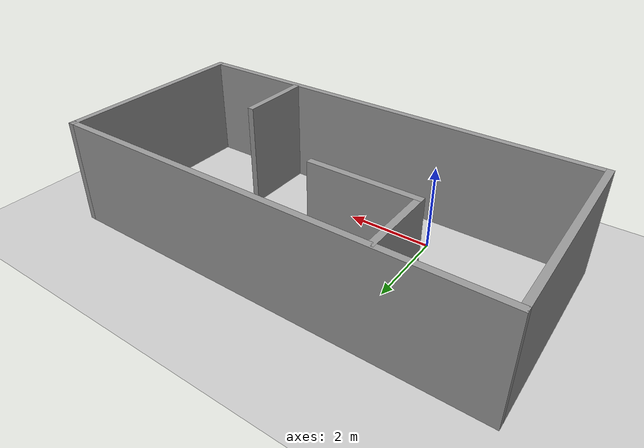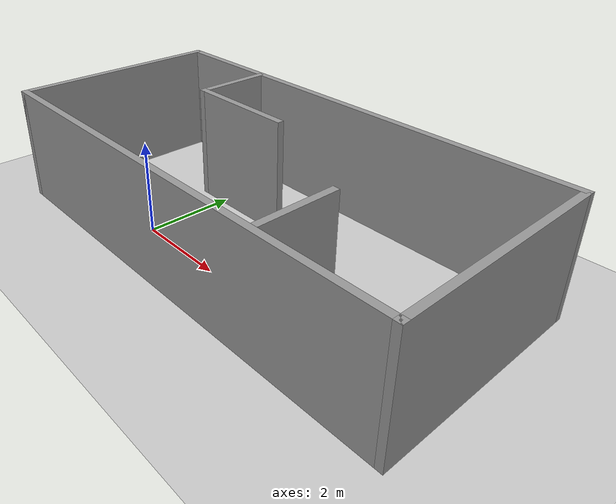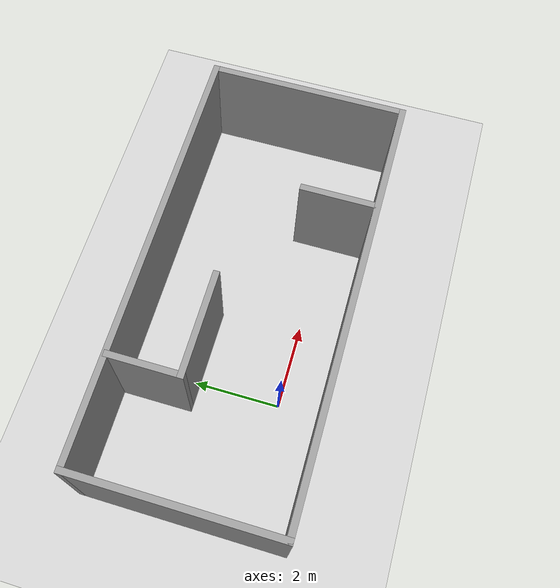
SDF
<sdf version="1.7">
 <world name="default">
  <light name="sun" type="directional">
   <pose>0 0 10 0 -0 0</pose>
   <diffuse>0.8 0.8 0.8 1</diffuse>
   <specular>0.2 0.2 0.2 1</specular>
   <attenuation>
    <range>1000</range>
    <constant>0.9</constant>
    <linear>0.01</linear>
    <quadratic>0.001</quadratic>
   </attenuation>
   <direction>-0.5 0.1 -0.9</direction>
   <spot><inner_angle>0</inner_angle><outer_angle>0</outer_angle><falloff>0</falloff></spot>
  </light>
  <model name="ground_plane">
   <static>1</static>
   <link name="link">
    <collision name="collision">
     <geometry><plane><normal>0 0 1</normal><size>100 100</size></plane></geometry>
     <surface>
      <contact><collide_bitmask>65535</collide_bitmask></contact>
      <friction><ode><mu>100</mu><mu2>50</mu2></ode></friction>
     </surface>
    </collision>
    <visual name="visual">
     <cast_shadows>0</cast_shadows>
     <geometry><plane><normal>0 0 1</normal><size>100 100</size></plane></geometry>
     <material>
      <script><uri>file://media/materials/scripts/gazebo.material</uri><name>Gazebo/Grey</name></script>
     </material>
    </visual>
   </link>
  </model>
  <gravity>0 0 -9.8</gravity>
  <magnetic_field>6e-06 2.3e-05 -4.2e-05</magnetic_field>
  <atmosphere type="adiabatic"/>
  <physics type="ode">
   <max_step_size>0.001</max_step_size>
   <real_time_factor>1</real_time_factor>
   <real_time_update_rate>1000</real_time_update_rate>
  </physics>
  <scene><ambient>0.4 0.4 0.4 1</ambient><background>0.7 0.7 0.7 1</background><shadows>1</shadows></scene>
  <audio><device>default</device></audio>
  <spherical_coordinates>
   <surface_model>EARTH_WGS84</surface_model>
   <latitude_deg>0</latitude_deg>
   <longitude_deg>0</longitude_deg>
   <elevation>0</elevation>
   <heading_deg>0</heading_deg>
  </spherical_coordinates>
  <model name="my_custom_world.world">
   <pose>1.97009 1.29653 0 0 -0 0</pose>
   <link name="Wall_1">
    <collision name="Wall_1_Collision">
     <geometry><box><size>10.25 0.15 2.5</size></box></geometry>
     <pose>0 0 1.25 0 -0 0</pose>
    </collision>
    <visual name="Wall_1_Visual">
     <pose>0 0 1.25 0 -0 0</pose>
     <geometry><box><size>10.25 0.15 2.5</size></box></geometry>
     <material>
      <script><uri>file://media/materials/scripts/gazebo.material</uri><name>Gazebo/Grey</name></script>
      <ambient>1 1 1 1</ambient>
     </material>
     <meta><layer>0</layer></meta>
    </visual>
    <pose>0 2.3 0 0 -0 3.14159</pose>
   </link>
   <link name="Wall_2">
    <collision name="Wall_2_Collision">
     <geometry><box><size>4.75 0.15 2.5</size></box></geometry>
     <pose>0 0 1.25 0 -0 0</pose>
    </collision>
    <visual name="Wall_2_Visual">
     <pose>0 0 1.25 0 -0 0</pose>
     <geometry><box><size>4.75 0.15 2.5</size></box></geometry>
     <material>
      <script><uri>file://media/materials/scripts/gazebo.material</uri><name>Gazebo/Grey</name></script>
      <ambient>1 1 1 1</ambient>
     </material>
     <meta><layer>0</layer></meta>
    </visual>
    <pose>-5.05 0 0 0 -0 -1.5708</pose>
   </link>
   <link name="Wall_3">
    <collision name="Wall_3_Collision">
     <geometry><box><size>10.25 0.15 2.5</size></box></geometry>
     <pose>0 0 1.25 0 -0 0</pose>
    </collision>
    <visual name="Wall_3_Visual">
     <pose>0 0 1.25 0 -0 0</pose>
     <geometry><box><size>10.25 0.15 2.5</size></box></geometry>
     <material>
      <script><uri>file://media/materials/scripts/gazebo.material</uri><name>Gazebo/Grey</name></script>
      <ambient>1 1 1 1</ambient>
     </material>
     <meta><layer>0</layer></meta>
    </visual>
    <pose>0 -2.3 0 0 -0 0</pose>
   </link>
   <link name="Wall_4">
    <collision name="Wall_4_Collision">
     <geometry><box><size>4.75 0.15 2.5</size></box></geometry>
     <pose>0 0 1.25 0 -0 0</pose>
    </collision>
    <visual name="Wall_4_Visual">
     <pose>0 0 1.25 0 -0 0</pose>
     <geometry><box><size>4.75 0.15 2.5</size></box></geometry>
     <material>
      <script><uri>file://media/materials/scripts/gazebo.material</uri><name>Gazebo/Grey</name></script>
      <ambient>1 1 1 1</ambient>
     </material>
     <meta><layer>0</layer></meta>
    </visual>
    <pose>5.05 0 0 0 -0 1.5708</pose>
   </link>
   <link name="Wall_6">
    <collision name="Wall_6_Collision">
     <geometry><box><size>1.75 0.15 2.5</size></box></geometry>
     <pose>0 0 1.25 0 -0 0</pose>
    </collision>
    <visual name="Wall_6_Visual">
     <pose>0 0 1.25 0 -0 0</pose>
     <geometry><box><size>1.75 0.15 2.5</size></box></geometry>
     <material>
      <script><uri>file://media/materials/scripts/gazebo.material</uri><name>Gazebo/Grey</name></script>
      <ambient>1 1 1 1</ambient>
     </material>
     <meta><layer>0</layer></meta>
    </visual>
    <pose>-2.57304 1.45977 0 0 -0 -1.5708</pose>
   </link>
   <link name="Wall_7">
    <collision name="Wall_7_Collision">
     <geometry><box><size>2.5 0.15 2.5</size></box></geometry>
     <pose>0 0 1.25 0 -0 0</pose>
    </collision>
    <visual name="Wall_7_Visual">
     <pose>0 0 1.25 0 -0 0</pose>
     <geometry><box><size>2.5 0.15 2.5</size></box></geometry>
     <material>
      <script><uri>file://media/materials/scripts/gazebo.material</uri><name>Gazebo/Grey</name></script>
      <ambient>1 1 1 1</ambient>
     </material>
     <meta><layer>0</layer></meta>
    </visual>
    <pose>-1.39804 0.659773 0 0 -0 0</pose>
   </link>
   <link name="Wall_9">
    <collision name="Wall_9_Collision">
     <geometry><box><size>1.75 0.15 2.5</size></box></geometry>
     <pose>0 0 1.25 0 -0 0</pose>
    </collision>
    <visual name="Wall_9_Visual">
     <pose>0 0 1.25 0 -0 0</pose>
     <geometry><box><size>1.75 0.15 2.5</size></box></geometry>
     <material>
      <script><uri>file://media/materials/scripts/gazebo.material</uri><name>Gazebo/Grey</name></script>
      <ambient>1 1 1 1</ambient>
     </material>
     <meta><layer>0</layer></meta>
    </visual>
    <pose>2.39501 -1.38533 0 0 -0 1.5708</pose>
   </link>
   <static>1</static>
  </model>
 </world>
</sdf>
